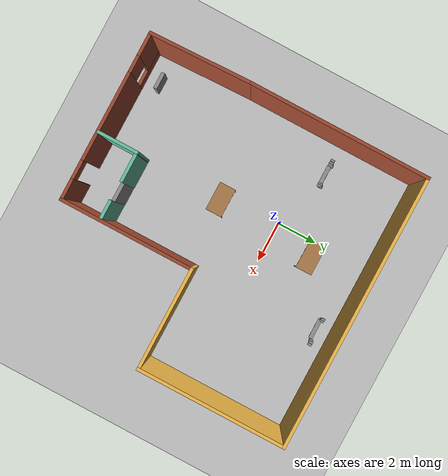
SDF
<sdf version="1.6">
 <world name="default">
  <plugin name="helloworld" filename="libhelloworld.so"/>
  <light name="sun" type="directional">
   <pose>0 0 10 0 -0 0</pose>
   <diffuse>0.8 0.8 0.8 1</diffuse>
   <specular>0.1 0.1 0.1 1</specular>
   <attenuation>
    <range>1000</range>
    <constant>0.9</constant>
    <linear>0.01</linear>
    <quadratic>0.001</quadratic>
   </attenuation>
   <direction>-0.5 0.5 -1</direction>
  </light>
  <model name="ground_plane">
   <static>1</static>
   <link name="link">
    <collision name="collision">
     <geometry><plane><normal>0 0 1</normal><size>100 100</size></plane></geometry>
     <surface><friction><ode><mu>100</mu><mu2>50</mu2></ode></friction></surface>
    </collision>
    <visual name="visual">
     <cast_shadows>0</cast_shadows>
     <geometry><plane><normal>0 0 1</normal><size>100 100</size></plane></geometry>
     <material>
      <script><uri>file://media/materials/scripts/gazebo.material</uri><name>Gazebo/Grey</name></script>
     </material>
    </visual>
   </link>
  </model>
  <gravity>0 0 -9.8</gravity>
  <magnetic_field>6e-06 2.3e-05 -4.2e-05</magnetic_field>
  <atmosphere type="adiabatic"/>
  <physics name="default_physics" default="0" type="ode">
   <max_step_size>0.001</max_step_size>
   <real_time_factor>1</real_time_factor>
   <real_time_update_rate>1000</real_time_update_rate>
  </physics>
  <scene><ambient>0.4 0.4 0.4 1</ambient><background>0.7 0.7 0.7 1</background><shadows>1</shadows></scene>
  <spherical_coordinates>
   <surface_model>EARTH_WGS84</surface_model>
   <latitude_deg>0</latitude_deg>
   <longitude_deg>0</longitude_deg>
   <elevation>0</elevation>
   <heading_deg>0</heading_deg>
  </spherical_coordinates>
  <model name="model">
   <link name="link_0">
    <pose>-0.018264 0.058854 0.476808 0 -0 0</pose>
    <inertial>
     <mass>1</mass>
     <inertia>
      <ixx>0.166667</ixx>
      <ixy>0</ixy>
      <ixz>0</ixz>
      <iyy>0.166667</iyy>
      <iyz>0</iyz>
      <izz>0.166667</izz>
     </inertia>
    </inertial>
    <visual name="visual">
     <geometry><box><size>1 0.2 0.1</size></box></geometry>
     <material>
      <lighting>1</lighting>
      <script><uri>file://media/materials/scripts/gazebo.material</uri><name>Gazebo/Grey</name></script>
      <ambient>0.3 0.3 0.3 1</ambient>
      <diffuse>0.7 0.7 0.7 1</diffuse>
      <specular>0.01 0.01 0.01 1</specular>
      <emissive>0 0 0 1</emissive>
      <shader type="vertex"><normal_map>__default__</normal_map></shader>
     </material>
    </visual>
    <collision name="collision">
     <geometry><box><size>1 0.2 0.1</size></box></geometry>
     <surface>
      <friction>
       <ode><mu>1</mu><mu2>1</mu2><fdir1>0 0 0</fdir1><slip1>0</slip1><slip2>0</slip2></ode>
       <torsional>
        <coefficient>1</coefficient>
        <patch_radius>0</patch_radius>
        <surface_radius>0</surface_radius>
        <use_patch_radius>1</use_patch_radius>
        <ode><slip>0</slip></ode>
       </torsional>
      </friction>
      <bounce><restitution_coefficient>0</restitution_coefficient><threshold>1e+06</threshold></bounce>
      <contact>
       <collide_without_contact>0</collide_without_contact>
       <collide_without_contact_bitmask>1</collide_without_contact_bitmask>
       <collide_bitmask>1</collide_bitmask>
       <ode>
        <soft_cfm>0</soft_cfm>
        <soft_erp>0.2</soft_erp>
        <kp>1e+13</kp>
        <kd>1</kd>
        <max_vel>0.01</max_vel>
        <min_depth>0</min_depth>
       </ode>
       <bullet>
        <split_impulse>1</split_impulse>
        <split_impulse_penetration_threshold>-0.01</split_impulse_penetration_threshold>
        <soft_cfm>0</soft_cfm>
        <soft_erp>0.2</soft_erp>
        <kp>1e+13</kp>
        <kd>1</kd>
       </bullet>
      </contact>
     </surface>
    </collision>
   </link>
   <link name="link_0_clone">
    <pose>0.554218 -0.010327 0.150666 0 -0 0</pose>
    <inertial>
     <mass>1</mass>
     <inertia>
      <ixx>0.166667</ixx>
      <ixy>0</ixy>
      <ixz>0</ixz>
      <iyy>0.166667</iyy>
      <iyz>0</iyz>
      <izz>0.166667</izz>
     </inertia>
    </inertial>
    <visual name="visual">
     <pose>0 0 0 0 1.57 0</pose>
     <geometry><box><size>1 0.2 0.1</size></box></geometry>
     <material>
      <lighting>1</lighting>
      <script><uri>file://media/materials/scripts/gazebo.material</uri><name>Gazebo/Grey</name></script>
      <ambient>0.3 0.3 0.3 1</ambient>
      <diffuse>0.7 0.7 0.7 1</diffuse>
      <specular>0.01 0.01 0.01 1</specular>
      <emissive>0 0 0 1</emissive>
      <shader type="vertex"><normal_map>__default__</normal_map></shader>
     </material>
    </visual>
    <collision name="collision">
     <pose>0 0 0 0 1.57 0</pose>
     <geometry><box><size>1 0.2 0.1</size></box></geometry>
     <surface>
      <friction>
       <ode><mu>1</mu><mu2>1</mu2><fdir1>0 0 0</fdir1><slip1>0</slip1><slip2>0</slip2></ode>
       <torsional>
        <coefficient>1</coefficient>
        <patch_radius>0</patch_radius>
        <surface_radius>0</surface_radius>
        <use_patch_radius>1</use_patch_radius>
        <ode><slip>0</slip></ode>
       </torsional>
      </friction>
      <bounce><restitution_coefficient>0</restitution_coefficient><threshold>1e+06</threshold></bounce>
      <contact>
       <collide_without_contact>0</collide_without_contact>
       <collide_without_contact_bitmask>1</collide_without_contact_bitmask>
       <collide_bitmask>1</collide_bitmask>
       <ode>
        <soft_cfm>0</soft_cfm>
        <soft_erp>0.2</soft_erp>
        <kp>1e+13</kp>
        <kd>1</kd>
        <max_vel>0.01</max_vel>
        <min_depth>0</min_depth>
       </ode>
       <bullet>
        <split_impulse>1</split_impulse>
        <split_impulse_penetration_threshold>-0.01</split_impulse_penetration_threshold>
        <soft_cfm>0</soft_cfm>
        <soft_erp>0.2</soft_erp>
        <kp>1e+13</kp>
        <kd>1</kd>
       </bullet>
      </contact>
     </surface>
    </collision>
   </link>
   <link name="link_0_clone_clone">
    <pose>-0.546578 -0.010327 0.158876 0 -0 0</pose>
    <inertial>
     <mass>1</mass>
     <inertia>
      <ixx>0.166667</ixx>
      <ixy>0</ixy>
      <ixz>0</ixz>
      <iyy>0.166667</iyy>
      <iyz>0</iyz>
      <izz>0.166667</izz>
     </inertia>
    </inertial>
    <visual name="visual">
     <pose>0 0 0 0 1.57 0</pose>
     <geometry><box><size>1 0.2 0.1</size></box></geometry>
     <material>
      <lighting>1</lighting>
      <script><uri>file://media/materials/scripts/gazebo.material</uri><name>Gazebo/Grey</name></script>
      <ambient>0.3 0.3 0.3 1</ambient>
      <diffuse>0.7 0.7 0.7 1</diffuse>
      <specular>0.01 0.01 0.01 1</specular>
      <emissive>0 0 0 1</emissive>
      <shader type="vertex"><normal_map>__default__</normal_map></shader>
     </material>
    </visual>
    <collision name="collision">
     <pose>0 0 0 0 1.57 0</pose>
     <geometry><box><size>1 0.2 0.1</size></box></geometry>
     <surface>
      <friction>
       <ode><mu>1</mu><mu2>1</mu2><fdir1>0 0 0</fdir1><slip1>0</slip1><slip2>0</slip2></ode>
       <torsional>
        <coefficient>1</coefficient>
        <patch_radius>0</patch_radius>
        <surface_radius>0</surface_radius>
        <use_patch_radius>1</use_patch_radius>
        <ode><slip>0</slip></ode>
       </torsional>
      </friction>
      <bounce><restitution_coefficient>0</restitution_coefficient><threshold>1e+06</threshold></bounce>
      <contact>
       <collide_without_contact>0</collide_without_contact>
       <collide_without_contact_bitmask>1</collide_without_contact_bitmask>
       <collide_bitmask>1</collide_bitmask>
       <ode>
        <soft_cfm>0</soft_cfm>
        <soft_erp>0.2</soft_erp>
        <kp>1e+13</kp>
        <kd>1</kd>
        <max_vel>0.01</max_vel>
        <min_depth>0</min_depth>
       </ode>
       <bullet>
        <split_impulse>1</split_impulse>
        <split_impulse_penetration_threshold>-0.01</split_impulse_penetration_threshold>
        <soft_cfm>0</soft_cfm>
        <soft_erp>0.2</soft_erp>
        <kp>1e+13</kp>
        <kd>1</kd>
       </bullet>
      </contact>
     </surface>
    </collision>
   </link>
   <link name="link_1">
    <pose>0.654616 -0.010327 -0.392054 0 -0 0</pose>
    <inertial>
     <mass>1</mass>
     <inertia>
      <ixx>0.166667</ixx>
      <ixy>0</ixy>
      <ixz>0</ixz>
      <iyy>0.166667</iyy>
      <iyz>0</iyz>
      <izz>0.166667</izz>
     </inertia>
    </inertial>
    <visual name="visual">
     <geometry><box><size>0.1 0.2 0.1</size></box></geometry>
     <material>
      <lighting>1</lighting>
      <script><uri>file://media/materials/scripts/gazebo.material</uri><name>Gazebo/Grey</name></script>
      <ambient>0.3 0.3 0.3 1</ambient>
      <diffuse>0.7 0.7 0.7 1</diffuse>
      <specular>0.01 0.01 0.01 1</specular>
      <emissive>0 0 0 1</emissive>
      <shader type="vertex"><normal_map>__default__</normal_map></shader>
     </material>
    </visual>
    <collision name="collision">
     <geometry><box><size>0.1 0.2 0.1</size></box></geometry>
     <surface>
      <friction>
       <ode><mu>1</mu><mu2>1</mu2><fdir1>0 0 0</fdir1><slip1>0</slip1><slip2>0</slip2></ode>
       <torsional>
        <coefficient>1</coefficient>
        <patch_radius>0</patch_radius>
        <surface_radius>0</surface_radius>
        <use_patch_radius>1</use_patch_radius>
        <ode><slip>0</slip></ode>
       </torsional>
      </friction>
      <bounce><restitution_coefficient>0</restitution_coefficient><threshold>1e+06</threshold></bounce>
      <contact>
       <collide_without_contact>0</collide_without_contact>
       <collide_without_contact_bitmask>1</collide_without_contact_bitmask>
       <collide_bitmask>1</collide_bitmask>
       <ode>
        <soft_cfm>0</soft_cfm>
        <soft_erp>0.2</soft_erp>
        <kp>1e+13</kp>
        <kd>1</kd>
        <max_vel>0.01</max_vel>
        <min_depth>0</min_depth>
       </ode>
       <bullet>
        <split_impulse>1</split_impulse>
        <split_impulse_penetration_threshold>-0.01</split_impulse_penetration_threshold>
        <soft_cfm>0</soft_cfm>
        <soft_erp>0.2</soft_erp>
        <kp>1e+13</kp>
        <kd>1</kd>
       </bullet>
      </contact>
     </surface>
    </collision>
   </link>
   <link name="link_1_clone">
    <pose>-0.643999 -0.027874 -0.394296 0 -0 0</pose>
    <inertial>
     <mass>1</mass>
     <inertia>
      <ixx>0.166667</ixx>
      <ixy>0</ixy>
      <ixz>0</ixz>
      <iyy>0.166667</iyy>
      <iyz>0</iyz>
      <izz>0.166667</izz>
     </inertia>
    </inertial>
    <visual name="visual">
     <geometry><box><size>0.1 0.2 0.1</size></box></geometry>
     <material>
      <lighting>1</lighting>
      <script><uri>file://media/materials/scripts/gazebo.material</uri><name>Gazebo/Grey</name></script>
      <ambient>0.3 0.3 0.3 1</ambient>
      <diffuse>0.7 0.7 0.7 1</diffuse>
      <specular>0.01 0.01 0.01 1</specular>
      <emissive>0 0 0 1</emissive>
      <shader type="vertex"><normal_map>__default__</normal_map></shader>
     </material>
    </visual>
    <collision name="collision">
     <geometry><box><size>0.1 0.2 0.1</size></box></geometry>
     <surface>
      <friction>
       <ode><mu>1</mu><mu2>1</mu2><fdir1>0 0 0</fdir1><slip1>0</slip1><slip2>0</slip2></ode>
       <torsional>
        <coefficient>1</coefficient>
        <patch_radius>0</patch_radius>
        <surface_radius>0</surface_radius>
        <use_patch_radius>1</use_patch_radius>
        <ode><slip>0</slip></ode>
       </torsional>
      </friction>
      <bounce><restitution_coefficient>0</restitution_coefficient><threshold>1e+06</threshold></bounce>
      <contact>
       <collide_without_contact>0</collide_without_contact>
       <collide_without_contact_bitmask>1</collide_without_contact_bitmask>
       <collide_bitmask>1</collide_bitmask>
       <ode>
        <soft_cfm>0</soft_cfm>
        <soft_erp>0.2</soft_erp>
        <kp>1e+13</kp>
        <kd>1</kd>
        <max_vel>0.01</max_vel>
        <min_depth>0</min_depth>
       </ode>
       <bullet>
        <split_impulse>1</split_impulse>
        <split_impulse_penetration_threshold>-0.01</split_impulse_penetration_threshold>
        <soft_cfm>0</soft_cfm>
        <soft_erp>0.2</soft_erp>
        <kp>1e+13</kp>
        <kd>1</kd>
       </bullet>
      </contact>
     </surface>
    </collision>
   </link>
   <joint name="link_0_JOINT_1" type="revolute">
    <parent>link_0</parent>
    <child>link_0_clone</child>
    <pose>0 0 0.3 0 -0 0</pose>
    <axis>
     <xyz>1 0 0</xyz>
     <use_parent_model_frame>0</use_parent_model_frame>
     <limit>
      <lower>-1.79769e+308</lower>
      <upper>1.79769e+308</upper>
      <effort>-1</effort>
      <velocity>-1</velocity>
     </limit>
     <dynamics>
      <spring_reference>0</spring_reference>
      <spring_stiffness>0</spring_stiffness>
      <damping>0</damping>
     </dynamics>
    </axis>
    <physics>
     <ode><limit><cfm>0</cfm><erp>0.2</erp></limit><suspension><cfm>0</cfm><erp>0.2</erp></suspension></ode>
    </physics>
   </joint>
   <joint name="link_0_JOINT_2" type="revolute">
    <parent>link_0</parent>
    <child>link_0_clone_clone</child>
    <pose>0 0 0.3 0 -0 0</pose>
    <axis>
     <xyz>1 0 0</xyz>
     <use_parent_model_frame>0</use_parent_model_frame>
     <limit>
      <lower>-1.79769e+308</lower>
      <upper>1.79769e+308</upper>
      <effort>-1</effort>
      <velocity>-1</velocity>
     </limit>
     <dynamics>
      <spring_reference>0</spring_reference>
      <spring_stiffness>0</spring_stiffness>
      <damping>0</damping>
     </dynamics>
    </axis>
    <physics>
     <ode><limit><cfm>0</cfm><erp>0.2</erp></limit><suspension><cfm>0</cfm><erp>0.2</erp></suspension></ode>
    </physics>
   </joint>
   <joint name="link_0_clone_JOINT_3" type="revolute">
    <parent>link_0_clone</parent>
    <child>link_1</child>
    <axis>
     <xyz>1 0 0</xyz>
     <use_parent_model_frame>0</use_parent_model_frame>
     <limit>
      <lower>-1.79769e+308</lower>
      <upper>1.79769e+308</upper>
      <effort>-1</effort>
      <velocity>-1</velocity>
     </limit>
     <dynamics>
      <spring_reference>0</spring_reference>
      <spring_stiffness>0</spring_stiffness>
      <damping>0</damping>
     </dynamics>
    </axis>
    <physics>
     <ode><limit><cfm>0</cfm><erp>0.2</erp></limit><suspension><cfm>0</cfm><erp>0.2</erp></suspension></ode>
    </physics>
   </joint>
   <joint name="link_0_clone_clone_JOINT_4" type="revolute">
    <parent>link_0_clone_clone</parent>
    <child>link_1_clone</child>
    <axis>
     <xyz>1 0 0</xyz>
     <use_parent_model_frame>0</use_parent_model_frame>
     <limit>
      <lower>-1.79769e+308</lower>
      <upper>1.79769e+308</upper>
      <effort>-1</effort>
      <velocity>-1</velocity>
     </limit>
     <dynamics>
      <spring_reference>0</spring_reference>
      <spring_stiffness>0</spring_stiffness>
      <damping>0</damping>
     </dynamics>
    </axis>
    <physics>
     <ode><limit><cfm>0</cfm><erp>0.2</erp></limit><suspension><cfm>0</cfm><erp>0.2</erp></suspension></ode>
    </physics>
   </joint>
   <static>0</static>
   <pose>-3.00057 0.839522 0.548334 -2.98944 0.007369 0.007641</pose>
  </model>
  <model name="model_0">
   <pose>1.93886 -2.06614 0 0 -0 0</pose>
   <link name="Door_2">
    <collision name="Door_2_Collision">
     <geometry><box><size>0.9 0.17 2</size></box></geometry>
     <pose>0 0 1 0 -0 0</pose>
    </collision>
    <visual name="Door_2_Visual">
     <pose>0 0 1 0 -0 0</pose>
     <geometry><box><size>0.9 0.17 2</size></box></geometry>
     <material>
      <script><uri>file://media/materials/scripts/gazebo.material</uri><name>Gazebo/Grey</name></script>
     </material>
    </visual>
    <pose>0.291043 -4.84192 0 0 -0 0</pose>
   </link>
   <link name="Wall_0">
    <collision name="Wall_0_Collision">
     <geometry><box><size>8.75 0.15 2.5</size></box></geometry>
     <pose>0 0 1.25 0 -0 0</pose>
    </collision>
    <visual name="Wall_0_Visual">
     <pose>0 0 1.25 0 -0 0</pose>
     <geometry><box><size>8.75 0.15 2.5</size></box></geometry>
     <material>
      <script><uri>file://media/materials/scripts/gazebo.material</uri><name>Gazebo/Bricks</name></script>
      <ambient>1 1 1 1</ambient>
     </material>
    </visual>
    <pose>-6.54886 2.42614 0 0 -0 1.5708</pose>
   </link>
   <link name="Wall_1">
    <collision name="Wall_1_Collision">
     <geometry><box><size>13.25 0.15 2.5</size></box></geometry>
     <pose>0 0 1.25 0 -0 0</pose>
    </collision>
    <visual name="Wall_1_Visual">
     <pose>0 0 1.25 0 -0 0</pose>
     <geometry><box><size>13.25 0.15 2.5</size></box></geometry>
     <material>
      <script><uri>file://media/materials/scripts/gazebo.material</uri><name>Gazebo/Grey</name></script>
      <ambient>1 0.764706 0.305882 1</ambient>
     </material>
    </visual>
    <pose>0.001141 6.72614 0 0 -0 0</pose>
   </link>
   <link name="Wall_16">
    <collision name="Wall_16_Collision">
     <geometry><box><size>2 0.15 2.5</size></box></geometry>
     <pose>0 0 1.25 0 -0 0</pose>
    </collision>
    <visual name="Wall_16_Visual">
     <pose>0 0 1.25 0 -0 0</pose>
     <geometry><box><size>2 0.15 2.5</size></box></geometry>
     <material>
      <script><uri>file://media/materials/scripts/gazebo.material</uri><name>Gazebo/Grey</name></script>
      <ambient>0.435294 0.796078 0.67451 1</ambient>
     </material>
    </visual>
    <pose>-1.60567 -5.74424 0 0 -0 1.5708</pose>
   </link>
   <link name="Wall_17">
    <collision name="Wall_17_Collision">
     <geometry><box><size>1.5 0.15 2.5</size></box></geometry>
     <pose>0 0 1.25 0 -0 0</pose>
    </collision>
    <visual name="Wall_17_Visual">
     <pose>0 0 1.25 0 -0 0</pose>
     <geometry><box><size>1.5 0.15 2.5</size></box></geometry>
     <material>
      <script><uri>file://media/materials/scripts/gazebo.material</uri><name>Gazebo/Grey</name></script>
      <ambient>0.435294 0.796078 0.67451 1</ambient>
     </material>
    </visual>
    <pose>-0.930667 -4.81924 0 0 -0 0</pose>
   </link>
   <link name="Wall_19">
    <collision name="Wall_19_Collision">
     <geometry><box><size>1 0.15 2.5</size></box></geometry>
     <pose>0 0 1.25 0 -0 0</pose>
    </collision>
    <visual name="Wall_19_Visual">
     <pose>0 0 1.25 0 -0 0</pose>
     <geometry><box><size>1 0.15 2.5</size></box></geometry>
     <material>
      <script><uri>file://media/materials/scripts/gazebo.material</uri><name>Gazebo/Grey</name></script>
      <ambient>0.435294 0.796078 0.67451 1</ambient>
     </material>
    </visual>
    <pose>1.22492 -4.84192 0 0 -0 0</pose>
   </link>
   <link name="Wall_3">
    <collision name="Wall_3_Collision">
     <geometry><box><size>7.25 0.15 2.5</size></box></geometry>
     <pose>0 0 1.25 0 -0 0</pose>
    </collision>
    <visual name="Wall_3_Visual">
     <pose>0 0 1.25 0 -0 0</pose>
     <geometry><box><size>7.25 0.15 2.5</size></box></geometry>
     <material>
      <script><uri>file://media/materials/scripts/gazebo.material</uri><name>Gazebo/Grey</name></script>
      <ambient>1 0.764706 0.305882 1</ambient>
     </material>
    </visual>
    <pose>6.55114 3.17614 0 0 0 -1.5708</pose>
   </link>
   <link name="Wall_4">
    <collision name="Wall_4_Collision">
     <geometry><box><size>5 0.15 2.5</size></box></geometry>
     <pose>0 0 1.25 0 -0 0</pose>
    </collision>
    <visual name="Wall_4_Visual">
     <pose>0 0 1.25 0 -0 0</pose>
     <geometry><box><size>5 0.15 2.5</size></box></geometry>
     <material>
      <script><uri>file://media/materials/scripts/gazebo.material</uri><name>Gazebo/Grey</name></script>
      <ambient>1 0.764706 0.305882 1</ambient>
     </material>
    </visual>
    <pose>4.12614 -0.373859 0 0 -0 3.14159</pose>
   </link>
   <link name="Wall_5">
    <collision name="Wall_5_Collision">
     <geometry><box><size>6.5 0.15 2.5</size></box></geometry>
     <pose>0 0 1.25 0 -0 0</pose>
    </collision>
    <visual name="Wall_5_Visual">
     <pose>0 0 1.25 0 -0 0</pose>
     <geometry><box><size>6.5 0.15 2.5</size></box></geometry>
     <material>
      <script><uri>file://media/materials/scripts/gazebo.material</uri><name>Gazebo/Bricks</name></script>
      <ambient>1 1 1 1</ambient>
     </material>
    </visual>
    <pose>1.70114 -3.54886 0 0 0 -1.5708</pose>
   </link>
   <link name="Wall_6">
    <pose>-2.34886 -6.72386 0 0 -0 3.14159</pose>
    <visual name="Wall_6_Visual_0">
     <pose>-3.58432 0 1.25 0 -0 0</pose>
     <geometry><box><size>1.08136 0.15 2.5</size></box></geometry>
     <material>
      <script><uri>file://media/materials/scripts/gazebo.material</uri><name>Gazebo/Bricks</name></script>
      <ambient>1 1 1 1</ambient>
     </material>
    </visual>
    <collision name="Wall_6_Collision_0">
     <geometry><box><size>1.08136 0.15 2.5</size></box></geometry>
     <pose>-3.58432 0 1.25 0 -0 0</pose>
    </collision>
    <visual name="Wall_6_Visual_1">
     <pose>-0.001144 0 1.25 0 -0 0</pose>
     <geometry><box><size>4.285 0.15 2.5</size></box></geometry>
     <material>
      <script><uri>file://media/materials/scripts/gazebo.material</uri><name>Gazebo/Bricks</name></script>
      <ambient>1 1 1 1</ambient>
     </material>
    </visual>
    <collision name="Wall_6_Collision_1">
     <geometry><box><size>4.285 0.15 2.5</size></box></geometry>
     <pose>-0.001144 0 1.25 0 -0 0</pose>
    </collision>
    <visual name="Wall_6_Visual_2">
     <pose>3.13318 0 0.25 0 -0 0</pose>
     <geometry><box><size>1.98365 0.15 0.5</size></box></geometry>
     <material>
      <script><uri>file://media/materials/scripts/gazebo.material</uri><name>Gazebo/Bricks</name></script>
      <ambient>1 1 1 1</ambient>
     </material>
    </visual>
    <collision name="Wall_6_Collision_2">
     <geometry><box><size>1.98365 0.15 0.5</size></box></geometry>
     <pose>3.13318 0 0.25 0 -0 0</pose>
    </collision>
    <visual name="Wall_6_Visual_3">
     <pose>3.53318 0 1.5 0 -0 0</pose>
     <geometry><box><size>1.18365 0.15 2</size></box></geometry>
     <material>
      <script><uri>file://media/materials/scripts/gazebo.material</uri><name>Gazebo/Bricks</name></script>
      <ambient>1 1 1 1</ambient>
     </material>
    </visual>
    <collision name="Wall_6_Collision_3">
     <geometry><box><size>1.18365 0.15 2</size></box></geometry>
     <pose>3.53318 0 1.5 0 -0 0</pose>
    </collision>
    <visual name="Wall_6_Visual_4">
     <pose>2.54135 0 1.9 0 -0 0</pose>
     <geometry><box><size>0.8 0.15 1.2</size></box></geometry>
     <material>
      <script><uri>file://media/materials/scripts/gazebo.material</uri><name>Gazebo/Bricks</name></script>
      <ambient>1 1 1 1</ambient>
     </material>
    </visual>
    <collision name="Wall_6_Collision_4">
     <geometry><box><size>0.8 0.15 1.2</size></box></geometry>
     <pose>2.54135 0 1.9 0 -0 0</pose>
    </collision>
    <visual name="Wall_6_Visual_5">
     <pose>-2.59364 0 2.25 0 -0 0</pose>
     <geometry><box><size>0.9 0.15 0.5</size></box></geometry>
     <material>
      <script><uri>file://media/materials/scripts/gazebo.material</uri><name>Gazebo/Bricks</name></script>
      <ambient>1 1 1 1</ambient>
     </material>
    </visual>
    <collision name="Wall_6_Collision_5">
     <geometry><box><size>0.9 0.15 0.5</size></box></geometry>
     <pose>-2.59364 0 2.25 0 -0 0</pose>
    </collision>
   </link>
   <link name="Wall_7">
    <collision name="Wall_7_Collision">
     <geometry><box><size>5.00232 0.15 2.5</size></box></geometry>
     <pose>0 0 1.25 0 -0 0</pose>
    </collision>
    <visual name="Wall_7_Visual">
     <pose>0 0 1.25 0 -0 0</pose>
     <geometry><box><size>5.00232 0.15 2.5</size></box></geometry>
     <material>
      <script><uri>file://media/materials/scripts/gazebo.material</uri><name>Gazebo/Bricks</name></script>
      <ambient>1 1 1 1</ambient>
     </material>
    </visual>
    <pose>-6.47386 -4.29886 0 0 -0 1.60171</pose>
   </link>
   <link name="Window_0">
    <collision name="Window_0_Collision">
     <geometry><box><size>0.8 0.17 0.8</size></box></geometry>
     <pose>0 0 0.4 0 -0 0</pose>
    </collision>
    <visual name="Window_0_Visual">
     <pose>0 0 0.4 0 -0 0</pose>
     <geometry><box><size>0.8 0.17 0.8</size></box></geometry>
     <material>
      <script><uri>file://media/materials/scripts/gazebo.material</uri><name>Gazebo/Grey</name></script>
     </material>
    </visual>
    <pose>-4.99748 -5.76656 0.5 0 -0 0</pose>
   </link>
   <static>1</static>
  </model>
  <model name="model_clone">
   <link name="link_0">
    <pose>-0.018264 0.058854 0.476808 0 -0 0</pose>
    <inertial>
     <mass>1</mass>
     <inertia>
      <ixx>0.166667</ixx>
      <ixy>0</ixy>
      <ixz>0</ixz>
      <iyy>0.166667</iyy>
      <iyz>0</iyz>
      <izz>0.166667</izz>
     </inertia>
    </inertial>
    <visual name="visual">
     <geometry><box><size>1 0.2 0.1</size></box></geometry>
     <material>
      <lighting>1</lighting>
      <script><uri>file://media/materials/scripts/gazebo.material</uri><name>Gazebo/Grey</name></script>
      <ambient>0.3 0.3 0.3 1</ambient>
      <diffuse>0.7 0.7 0.7 1</diffuse>
      <specular>0.01 0.01 0.01 1</specular>
      <emissive>0 0 0 1</emissive>
      <shader type="vertex"><normal_map>__default__</normal_map></shader>
     </material>
    </visual>
    <collision name="collision">
     <geometry><box><size>1 0.2 0.1</size></box></geometry>
     <surface>
      <friction>
       <ode><mu>1</mu><mu2>1</mu2><fdir1>0 0 0</fdir1><slip1>0</slip1><slip2>0</slip2></ode>
       <torsional>
        <coefficient>1</coefficient>
        <patch_radius>0</patch_radius>
        <surface_radius>0</surface_radius>
        <use_patch_radius>1</use_patch_radius>
        <ode><slip>0</slip></ode>
       </torsional>
      </friction>
      <bounce><restitution_coefficient>0</restitution_coefficient><threshold>1e+06</threshold></bounce>
      <contact>
       <collide_without_contact>0</collide_without_contact>
       <collide_without_contact_bitmask>1</collide_without_contact_bitmask>
       <collide_bitmask>1</collide_bitmask>
       <ode>
        <soft_cfm>0</soft_cfm>
        <soft_erp>0.2</soft_erp>
        <kp>1e+13</kp>
        <kd>1</kd>
        <max_vel>0.01</max_vel>
        <min_depth>0</min_depth>
       </ode>
       <bullet>
        <split_impulse>1</split_impulse>
        <split_impulse_penetration_threshold>-0.01</split_impulse_penetration_threshold>
        <soft_cfm>0</soft_cfm>
        <soft_erp>0.2</soft_erp>
        <kp>1e+13</kp>
        <kd>1</kd>
       </bullet>
      </contact>
     </surface>
    </collision>
   </link>
   <link name="link_0_clone">
    <pose>0.554218 -0.010327 0.150666 0 -0 0</pose>
    <inertial>
     <mass>1</mass>
     <inertia>
      <ixx>0.166667</ixx>
      <ixy>0</ixy>
      <ixz>0</ixz>
      <iyy>0.166667</iyy>
      <iyz>0</iyz>
      <izz>0.166667</izz>
     </inertia>
    </inertial>
    <visual name="visual">
     <pose>0 0 0 0 1.57 0</pose>
     <geometry><box><size>1 0.2 0.1</size></box></geometry>
     <material>
      <lighting>1</lighting>
      <script><uri>file://media/materials/scripts/gazebo.material</uri><name>Gazebo/Grey</name></script>
      <ambient>0.3 0.3 0.3 1</ambient>
      <diffuse>0.7 0.7 0.7 1</diffuse>
      <specular>0.01 0.01 0.01 1</specular>
      <emissive>0 0 0 1</emissive>
      <shader type="vertex"><normal_map>__default__</normal_map></shader>
     </material>
    </visual>
    <collision name="collision">
     <pose>0 0 0 0 1.57 0</pose>
     <geometry><box><size>1 0.2 0.1</size></box></geometry>
     <surface>
      <friction>
       <ode><mu>1</mu><mu2>1</mu2><fdir1>0 0 0</fdir1><slip1>0</slip1><slip2>0</slip2></ode>
       <torsional>
        <coefficient>1</coefficient>
        <patch_radius>0</patch_radius>
        <surface_radius>0</surface_radius>
        <use_patch_radius>1</use_patch_radius>
        <ode><slip>0</slip></ode>
       </torsional>
      </friction>
      <bounce><restitution_coefficient>0</restitution_coefficient><threshold>1e+06</threshold></bounce>
      <contact>
       <collide_without_contact>0</collide_without_contact>
       <collide_without_contact_bitmask>1</collide_without_contact_bitmask>
       <collide_bitmask>1</collide_bitmask>
       <ode>
        <soft_cfm>0</soft_cfm>
        <soft_erp>0.2</soft_erp>
        <kp>1e+13</kp>
        <kd>1</kd>
        <max_vel>0.01</max_vel>
        <min_depth>0</min_depth>
       </ode>
       <bullet>
        <split_impulse>1</split_impulse>
        <split_impulse_penetration_threshold>-0.01</split_impulse_penetration_threshold>
        <soft_cfm>0</soft_cfm>
        <soft_erp>0.2</soft_erp>
        <kp>1e+13</kp>
        <kd>1</kd>
       </bullet>
      </contact>
     </surface>
    </collision>
   </link>
   <link name="link_0_clone_clone">
    <pose>-0.546578 -0.010327 0.158876 0 -0 0</pose>
    <inertial>
     <mass>1</mass>
     <inertia>
      <ixx>0.166667</ixx>
      <ixy>0</ixy>
      <ixz>0</ixz>
      <iyy>0.166667</iyy>
      <iyz>0</iyz>
      <izz>0.166667</izz>
     </inertia>
    </inertial>
    <visual name="visual">
     <pose>0 0 0 0 1.57 0</pose>
     <geometry><box><size>1 0.2 0.1</size></box></geometry>
     <material>
      <lighting>1</lighting>
      <script><uri>file://media/materials/scripts/gazebo.material</uri><name>Gazebo/Grey</name></script>
      <ambient>0.3 0.3 0.3 1</ambient>
      <diffuse>0.7 0.7 0.7 1</diffuse>
      <specular>0.01 0.01 0.01 1</specular>
      <emissive>0 0 0 1</emissive>
      <shader type="vertex"><normal_map>__default__</normal_map></shader>
     </material>
    </visual>
    <collision name="collision">
     <pose>0 0 0 0 1.57 0</pose>
     <geometry><box><size>1 0.2 0.1</size></box></geometry>
     <surface>
      <friction>
       <ode><mu>1</mu><mu2>1</mu2><fdir1>0 0 0</fdir1><slip1>0</slip1><slip2>0</slip2></ode>
       <torsional>
        <coefficient>1</coefficient>
        <patch_radius>0</patch_radius>
        <surface_radius>0</surface_radius>
        <use_patch_radius>1</use_patch_radius>
        <ode><slip>0</slip></ode>
       </torsional>
      </friction>
      <bounce><restitution_coefficient>0</restitution_coefficient><threshold>1e+06</threshold></bounce>
      <contact>
       <collide_without_contact>0</collide_without_contact>
       <collide_without_contact_bitmask>1</collide_without_contact_bitmask>
       <collide_bitmask>1</collide_bitmask>
       <ode>
        <soft_cfm>0</soft_cfm>
        <soft_erp>0.2</soft_erp>
        <kp>1e+13</kp>
        <kd>1</kd>
        <max_vel>0.01</max_vel>
        <min_depth>0</min_depth>
       </ode>
       <bullet>
        <split_impulse>1</split_impulse>
        <split_impulse_penetration_threshold>-0.01</split_impulse_penetration_threshold>
        <soft_cfm>0</soft_cfm>
        <soft_erp>0.2</soft_erp>
        <kp>1e+13</kp>
        <kd>1</kd>
       </bullet>
      </contact>
     </surface>
    </collision>
   </link>
   <link name="link_1">
    <pose>0.654616 -0.010327 -0.392054 0 -0 0</pose>
    <inertial>
     <mass>1</mass>
     <inertia>
      <ixx>0.166667</ixx>
      <ixy>0</ixy>
      <ixz>0</ixz>
      <iyy>0.166667</iyy>
      <iyz>0</iyz>
      <izz>0.166667</izz>
     </inertia>
    </inertial>
    <visual name="visual">
     <geometry><box><size>0.1 0.2 0.1</size></box></geometry>
     <material>
      <lighting>1</lighting>
      <script><uri>file://media/materials/scripts/gazebo.material</uri><name>Gazebo/Grey</name></script>
      <ambient>0.3 0.3 0.3 1</ambient>
      <diffuse>0.7 0.7 0.7 1</diffuse>
      <specular>0.01 0.01 0.01 1</specular>
      <emissive>0 0 0 1</emissive>
      <shader type="vertex"><normal_map>__default__</normal_map></shader>
     </material>
    </visual>
    <collision name="collision">
     <geometry><box><size>0.1 0.2 0.1</size></box></geometry>
     <surface>
      <friction>
       <ode><mu>1</mu><mu2>1</mu2><fdir1>0 0 0</fdir1><slip1>0</slip1><slip2>0</slip2></ode>
       <torsional>
        <coefficient>1</coefficient>
        <patch_radius>0</patch_radius>
        <surface_radius>0</surface_radius>
        <use_patch_radius>1</use_patch_radius>
        <ode><slip>0</slip></ode>
       </torsional>
      </friction>
      <bounce><restitution_coefficient>0</restitution_coefficient><threshold>1e+06</threshold></bounce>
      <contact>
       <collide_without_contact>0</collide_without_contact>
       <collide_without_contact_bitmask>1</collide_without_contact_bitmask>
       <collide_bitmask>1</collide_bitmask>
       <ode>
        <soft_cfm>0</soft_cfm>
        <soft_erp>0.2</soft_erp>
        <kp>1e+13</kp>
        <kd>1</kd>
        <max_vel>0.01</max_vel>
        <min_depth>0</min_depth>
       </ode>
       <bullet>
        <split_impulse>1</split_impulse>
        <split_impulse_penetration_threshold>-0.01</split_impulse_penetration_threshold>
        <soft_cfm>0</soft_cfm>
        <soft_erp>0.2</soft_erp>
        <kp>1e+13</kp>
        <kd>1</kd>
       </bullet>
      </contact>
     </surface>
    </collision>
   </link>
   <link name="link_1_clone">
    <pose>-0.643999 -0.027874 -0.394296 0 -0 0</pose>
    <inertial>
     <mass>1</mass>
     <inertia>
      <ixx>0.166667</ixx>
      <ixy>0</ixy>
      <ixz>0</ixz>
      <iyy>0.166667</iyy>
      <iyz>0</iyz>
      <izz>0.166667</izz>
     </inertia>
    </inertial>
    <visual name="visual">
     <geometry><box><size>0.1 0.2 0.1</size></box></geometry>
     <material>
      <lighting>1</lighting>
      <script><uri>file://media/materials/scripts/gazebo.material</uri><name>Gazebo/Grey</name></script>
      <ambient>0.3 0.3 0.3 1</ambient>
      <diffuse>0.7 0.7 0.7 1</diffuse>
      <specular>0.01 0.01 0.01 1</specular>
      <emissive>0 0 0 1</emissive>
      <shader type="vertex"><normal_map>__default__</normal_map></shader>
     </material>
    </visual>
    <collision name="collision">
     <geometry><box><size>0.1 0.2 0.1</size></box></geometry>
     <surface>
      <friction>
       <ode><mu>1</mu><mu2>1</mu2><fdir1>0 0 0</fdir1><slip1>0</slip1><slip2>0</slip2></ode>
       <torsional>
        <coefficient>1</coefficient>
        <patch_radius>0</patch_radius>
        <surface_radius>0</surface_radius>
        <use_patch_radius>1</use_patch_radius>
        <ode><slip>0</slip></ode>
       </torsional>
      </friction>
      <bounce><restitution_coefficient>0</restitution_coefficient><threshold>1e+06</threshold></bounce>
      <contact>
       <collide_without_contact>0</collide_without_contact>
       <collide_without_contact_bitmask>1</collide_without_contact_bitmask>
       <collide_bitmask>1</collide_bitmask>
       <ode>
        <soft_cfm>0</soft_cfm>
        <soft_erp>0.2</soft_erp>
        <kp>1e+13</kp>
        <kd>1</kd>
        <max_vel>0.01</max_vel>
        <min_depth>0</min_depth>
       </ode>
       <bullet>
        <split_impulse>1</split_impulse>
        <split_impulse_penetration_threshold>-0.01</split_impulse_penetration_threshold>
        <soft_cfm>0</soft_cfm>
        <soft_erp>0.2</soft_erp>
        <kp>1e+13</kp>
        <kd>1</kd>
       </bullet>
      </contact>
     </surface>
    </collision>
   </link>
   <joint name="link_0_JOINT_1" type="revolute">
    <parent>link_0</parent>
    <child>link_0_clone</child>
    <pose>0 0 0.3 0 -0 0</pose>
    <axis>
     <xyz>1 0 0</xyz>
     <use_parent_model_frame>0</use_parent_model_frame>
     <limit>
      <lower>-1.79769e+308</lower>
      <upper>1.79769e+308</upper>
      <effort>-1</effort>
      <velocity>-1</velocity>
     </limit>
     <dynamics>
      <spring_reference>0</spring_reference>
      <spring_stiffness>0</spring_stiffness>
      <damping>0</damping>
     </dynamics>
    </axis>
    <physics>
     <ode><limit><cfm>0</cfm><erp>0.2</erp></limit><suspension><cfm>0</cfm><erp>0.2</erp></suspension></ode>
    </physics>
   </joint>
   <joint name="link_0_JOINT_2" type="revolute">
    <parent>link_0</parent>
    <child>link_0_clone_clone</child>
    <pose>0 0 0.3 0 -0 0</pose>
    <axis>
     <xyz>1 0 0</xyz>
     <use_parent_model_frame>0</use_parent_model_frame>
     <limit>
      <lower>-1.79769e+308</lower>
      <upper>1.79769e+308</upper>
      <effort>-1</effort>
      <velocity>-1</velocity>
     </limit>
     <dynamics>
      <spring_reference>0</spring_reference>
      <spring_stiffness>0</spring_stiffness>
      <damping>0</damping>
     </dynamics>
    </axis>
    <physics>
     <ode><limit><cfm>0</cfm><erp>0.2</erp></limit><suspension><cfm>0</cfm><erp>0.2</erp></suspension></ode>
    </physics>
   </joint>
   <joint name="link_0_clone_JOINT_3" type="revolute">
    <parent>link_0_clone</parent>
    <child>link_1</child>
    <axis>
     <xyz>1 0 0</xyz>
     <use_parent_model_frame>0</use_parent_model_frame>
     <limit>
      <lower>-1.79769e+308</lower>
      <upper>1.79769e+308</upper>
      <effort>-1</effort>
      <velocity>-1</velocity>
     </limit>
     <dynamics>
      <spring_reference>0</spring_reference>
      <spring_stiffness>0</spring_stiffness>
      <damping>0</damping>
     </dynamics>
    </axis>
    <physics>
     <ode><limit><cfm>0</cfm><erp>0.2</erp></limit><suspension><cfm>0</cfm><erp>0.2</erp></suspension></ode>
    </physics>
   </joint>
   <joint name="link_0_clone_clone_JOINT_4" type="revolute">
    <parent>link_0_clone_clone</parent>
    <child>link_1_clone</child>
    <axis>
     <xyz>1 0 0</xyz>
     <use_parent_model_frame>0</use_parent_model_frame>
     <limit>
      <lower>-1.79769e+308</lower>
      <upper>1.79769e+308</upper>
      <effort>-1</effort>
      <velocity>-1</velocity>
     </limit>
     <dynamics>
      <spring_reference>0</spring_reference>
      <spring_stiffness>0</spring_stiffness>
      <damping>0</damping>
     </dynamics>
    </axis>
    <physics>
     <ode><limit><cfm>0</cfm><erp>0.2</erp></limit><suspension><cfm>0</cfm><erp>0.2</erp></suspension></ode>
    </physics>
   </joint>
   <static>0</static>
   <pose>3.60164 3.89239 0.548329 -2.98944 0.007376 0.00735</pose>
  </model>
  <model name="table">
   <static>0</static>
   <link name="link">
    <collision name="surface">
     <pose>0 0 1 0 -0 0</pose>
     <geometry><box><size>1.5 0.8 0.03</size></box></geometry>
     <surface><friction><ode><mu>0.6</mu><mu2>0.6</mu2></ode></friction></surface>
    </collision>
    <visual name="visual1">
     <pose>0 0 1 0 -0 0</pose>
     <geometry><box><size>1.4 0.8 0.04</size></box></geometry>
     <material>
      <script><uri>file://media/materials/scripts/gazebo.material</uri><name>Gazebo/Wood</name></script>
     </material>
    </visual>
    <collision name="front_left_leg">
     <pose>0.68 0.38 0.5 0 -0 0</pose>
     <geometry><cylinder><radius>0.02</radius><length>1</length></cylinder></geometry>
    </collision>
    <visual name="front_left_leg">
     <pose>0.68 0.38 0.5 0 -0 0</pose>
     <geometry><cylinder><radius>0.02</radius><length>1</length></cylinder></geometry>
     <material>
      <script><uri>file://media/materials/scripts/gazebo.material</uri><name>Gazebo/Grey</name></script>
     </material>
    </visual>
    <collision name="front_right_leg">
     <pose>0.68 -0.38 0.5 0 -0 0</pose>
     <geometry><cylinder><radius>0.02</radius><length>1</length></cylinder></geometry>
    </collision>
    <visual name="front_right_leg">
     <pose>0.68 -0.38 0.5 0 -0 0</pose>
     <geometry><cylinder><radius>0.02</radius><length>1</length></cylinder></geometry>
     <material>
      <script><uri>file://media/materials/scripts/gazebo.material</uri><name>Gazebo/Grey</name></script>
     </material>
    </visual>
    <collision name="back_right_leg">
     <pose>-0.68 -0.38 0.5 0 -0 0</pose>
     <geometry><cylinder><radius>0.02</radius><length>1</length></cylinder></geometry>
    </collision>
    <visual name="back_right_leg">
     <pose>-0.68 -0.38 0.5 0 -0 0</pose>
     <geometry><cylinder><radius>0.02</radius><length>1</length></cylinder></geometry>
     <material>
      <script><uri>file://media/materials/scripts/gazebo.material</uri><name>Gazebo/Grey</name></script>
     </material>
    </visual>
    <collision name="back_left_leg">
     <pose>-0.68 0.38 0.5 0 -0 0</pose>
     <geometry><cylinder><radius>0.02</radius><length>1</length></cylinder></geometry>
    </collision>
    <visual name="back_left_leg">
     <pose>-0.68 0.38 0.5 0 -0 0</pose>
     <geometry><cylinder><radius>0.02</radius><length>1</length></cylinder></geometry>
     <material>
      <script><uri>file://media/materials/scripts/gazebo.material</uri><name>Gazebo/Grey</name></script>
     </material>
    </visual>
    <inertial>
     <inertia><ixx>1</ixx><ixy>0</ixy><ixz>0</ixz><iyy>1</iyy><iyz>0</iyz><izz>1</izz></inertia>
     <mass>1</mass>
    </inertial>
   </link>
   <pose>0.737114 2.00074 -9e-06 0 -1e-06 0</pose>
  </model>
  <model name="table_clone">
   <static>0</static>
   <link name="link">
    <collision name="surface">
     <pose>0 0 1 0 -0 0</pose>
     <geometry><box><size>1.5 0.8 0.03</size></box></geometry>
     <surface><friction><ode><mu>0.6</mu><mu2>0.6</mu2></ode></friction></surface>
    </collision>
    <visual name="visual1">
     <pose>0 0 1 0 -0 0</pose>
     <geometry><box><size>1.4 0.8 0.04</size></box></geometry>
     <material>
      <script><uri>file://media/materials/scripts/gazebo.material</uri><name>Gazebo/Wood</name></script>
     </material>
    </visual>
    <collision name="front_left_leg">
     <pose>0.68 0.38 0.5 0 -0 0</pose>
     <geometry><cylinder><radius>0.02</radius><length>1</length></cylinder></geometry>
    </collision>
    <visual name="front_left_leg">
     <pose>0.68 0.38 0.5 0 -0 0</pose>
     <geometry><cylinder><radius>0.02</radius><length>1</length></cylinder></geometry>
     <material>
      <script><uri>file://media/materials/scripts/gazebo.material</uri><name>Gazebo/Grey</name></script>
     </material>
    </visual>
    <collision name="front_right_leg">
     <pose>0.68 -0.38 0.5 0 -0 0</pose>
     <geometry><cylinder><radius>0.02</radius><length>1</length></cylinder></geometry>
    </collision>
    <visual name="front_right_leg">
     <pose>0.68 -0.38 0.5 0 -0 0</pose>
     <geometry><cylinder><radius>0.02</radius><length>1</length></cylinder></geometry>
     <material>
      <script><uri>file://media/materials/scripts/gazebo.material</uri><name>Gazebo/Grey</name></script>
     </material>
    </visual>
    <collision name="back_right_leg">
     <pose>-0.68 -0.38 0.5 0 -0 0</pose>
     <geometry><cylinder><radius>0.02</radius><length>1</length></cylinder></geometry>
    </collision>
    <visual name="back_right_leg">
     <pose>-0.68 -0.38 0.5 0 -0 0</pose>
     <geometry><cylinder><radius>0.02</radius><length>1</length></cylinder></geometry>
     <material>
      <script><uri>file://media/materials/scripts/gazebo.material</uri><name>Gazebo/Grey</name></script>
     </material>
    </visual>
    <collision name="back_left_leg">
     <pose>-0.68 0.38 0.5 0 -0 0</pose>
     <geometry><cylinder><radius>0.02</radius><length>1</length></cylinder></geometry>
    </collision>
    <visual name="back_left_leg">
     <pose>-0.68 0.38 0.5 0 -0 0</pose>
     <geometry><cylinder><radius>0.02</radius><length>1</length></cylinder></geometry>
     <material>
      <script><uri>file://media/materials/scripts/gazebo.material</uri><name>Gazebo/Grey</name></script>
     </material>
    </visual>
    <inertial>
     <inertia><ixx>1</ixx><ixy>0</ixy><ixz>0</ixz><iyy>1</iyy><iyz>0</iyz><izz>1</izz></inertia>
     <mass>1</mass>
    </inertial>
   </link>
   <pose>0.34469 -2.8715 -9e-06 0 -1e-06 0</pose>
  </model>
  <model name="my_ball">
   <link name="link_1">
    <inertial>
     <mass>1</mass>
     <inertia><ixx>0.1</ixx><ixy>0</ixy><ixz>0</ixz><iyy>0.1</iyy><iyz>0</iyz><izz>0.1</izz></inertia>
    </inertial>
    <visual name="visual">
     <geometry><sphere><radius>0.1</radius></sphere></geometry>
     <material>
      <lighting>1</lighting>
      <script><uri>file://media/materials/scripts/gazebo.material</uri><name>Gazebo/White</name></script>
      <ambient>1 1 1 1</ambient>
      <diffuse>1 1 1 1</diffuse>
      <specular>1 1 1 1</specular>
      <emissive>1 1 1 1</emissive>
      <shader type="vertex"><normal_map>__default__</normal_map></shader>
     </material>
    </visual>
    <collision name="collision">
     <geometry><sphere><radius>0.1</radius></sphere></geometry>
     <surface>
      <friction>
       <ode><mu>1</mu><mu2>1</mu2><fdir1>0 0 0</fdir1><slip1>0</slip1><slip2>0</slip2></ode>
       <torsional>
        <coefficient>1</coefficient>
        <patch_radius>0</patch_radius>
        <surface_radius>0</surface_radius>
        <use_patch_radius>1</use_patch_radius>
        <ode><slip>0</slip></ode>
       </torsional>
      </friction>
      <bounce><restitution_coefficient>0</restitution_coefficient><threshold>1e+06</threshold></bounce>
      <contact>
       <collide_without_contact>0</collide_without_contact>
       <collide_without_contact_bitmask>1</collide_without_contact_bitmask>
       <collide_bitmask>1</collide_bitmask>
       <ode>
        <soft_cfm>0</soft_cfm>
        <soft_erp>0.2</soft_erp>
        <kp>1e+13</kp>
        <kd>1</kd>
        <max_vel>0.01</max_vel>
        <min_depth>0</min_depth>
       </ode>
       <bullet>
        <split_impulse>1</split_impulse>
        <split_impulse_penetration_threshold>-0.01</split_impulse_penetration_threshold>
        <soft_cfm>0</soft_cfm>
        <soft_erp>0.2</soft_erp>
        <kp>1e+13</kp>
        <kd>1</kd>
       </bullet>
      </contact>
     </surface>
    </collision>
   </link>
   <static>0</static>
   <pose>9.14654 0.420484 0.1 0 -0 0</pose>
  </model>
 </world>
</sdf>
